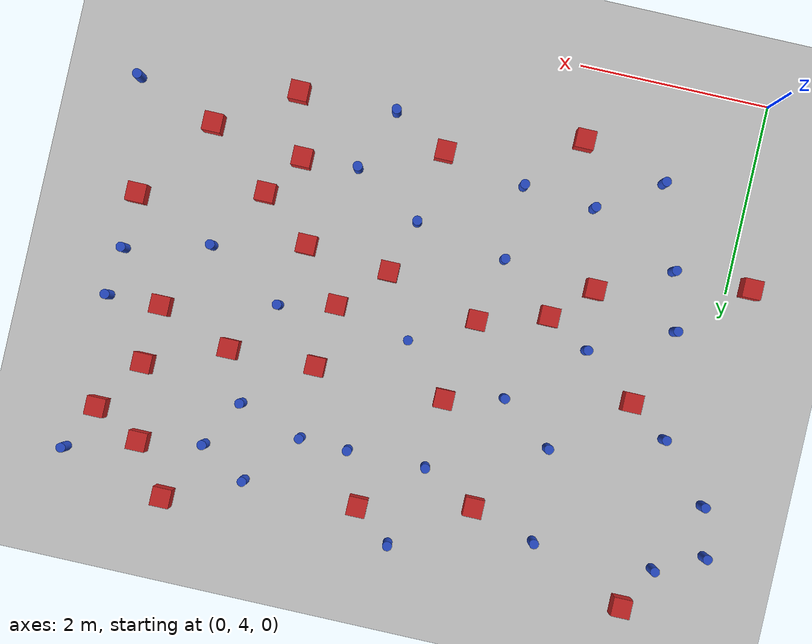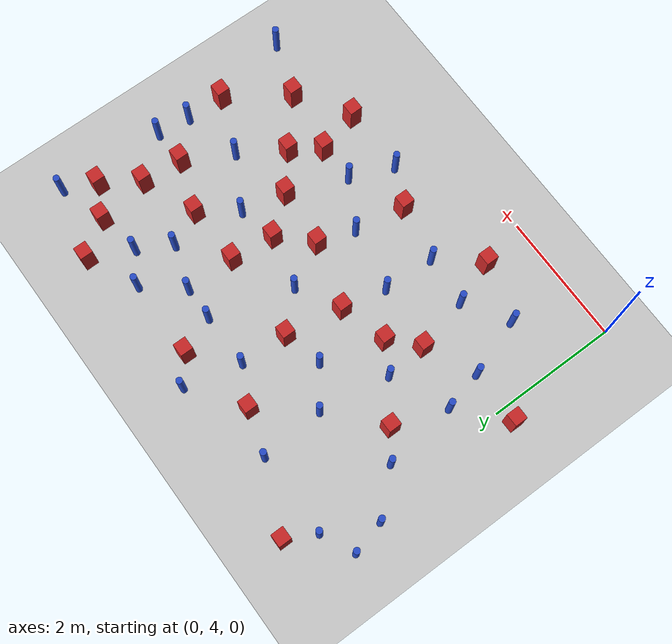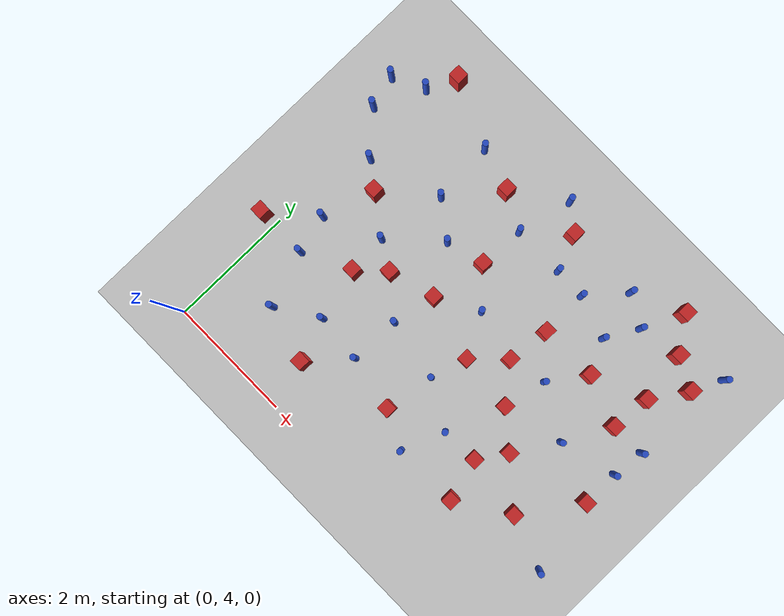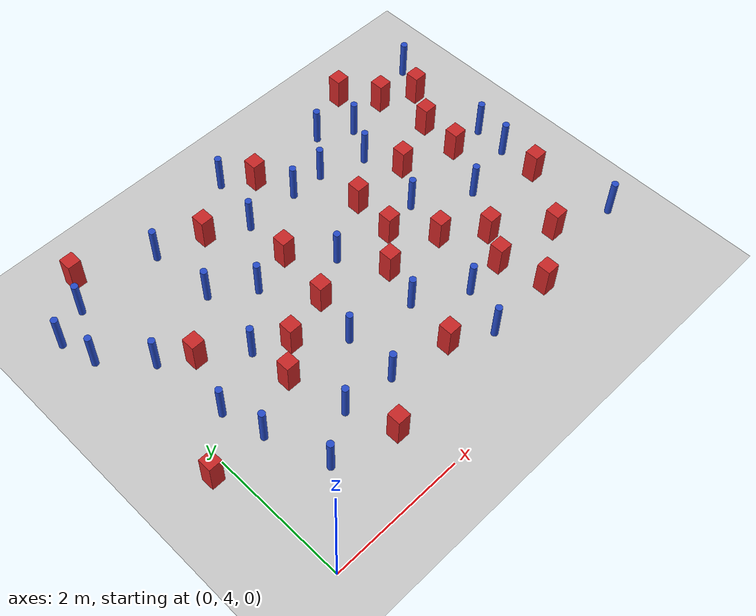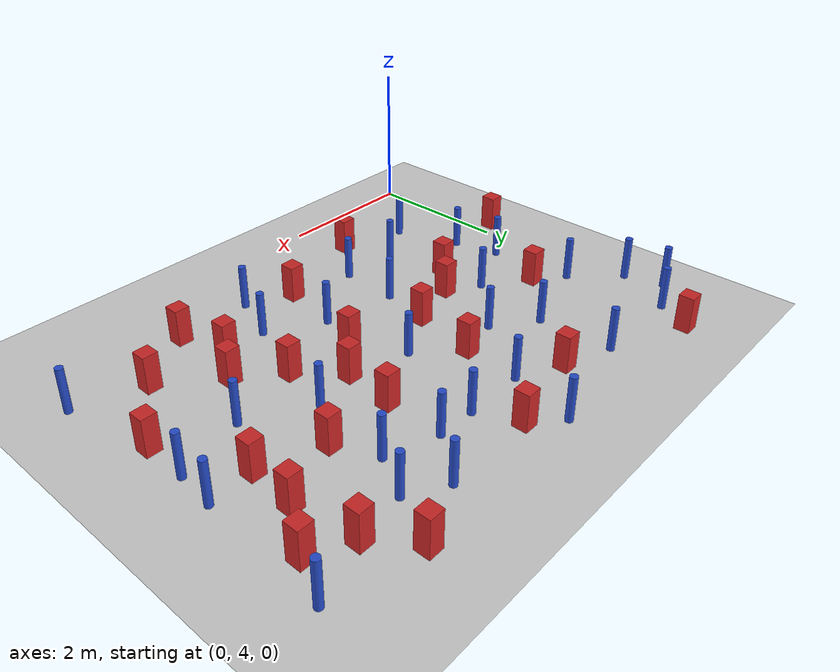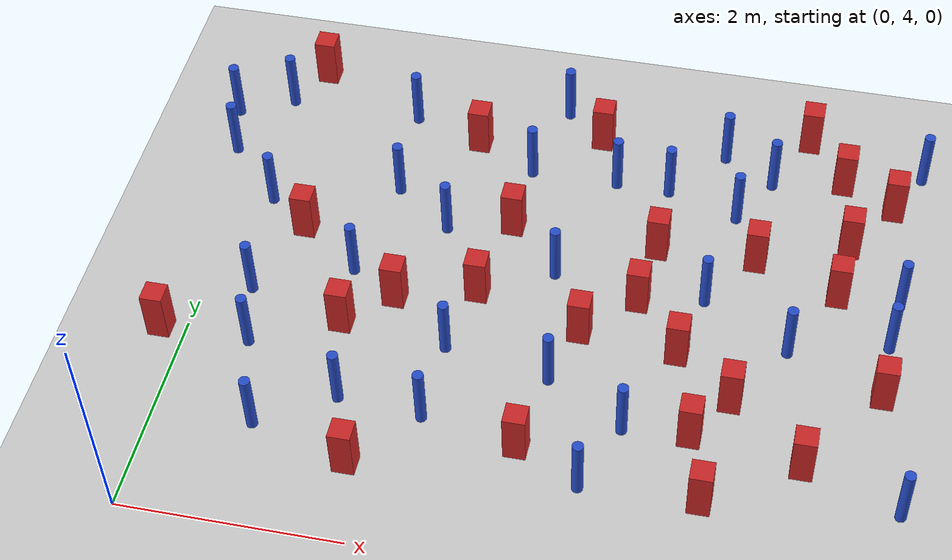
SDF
<sdf version="1.6">
 <world name="default">
  <model name="ground_plane">
   <static>1</static>
   <link name="link">
    <collision name="collision">
     <geometry><plane><normal>0 0 1</normal><size>100 100</size></plane></geometry>
     <surface><friction><ode><mu>100</mu><mu2>50</mu2></ode></friction></surface>
    </collision>
    <visual name="visual">
     <cast_shadows>0</cast_shadows>
     <geometry><plane><normal>0 0 1</normal><size>100 100</size></plane></geometry>
     <material>
      <ambient>1.0 1.0 1.0 1.0</ambient>
      <diffuse>0.8 0.8 0.8 1.0</diffuse>
      <specular>0.01 0.01 0.01 1.000000</specular>
     </material>
    </visual>
   </link>
  </model>
  <model name="pole_obstacle3">
   <static>true</static>
   <pose>0.441866988841 6.503014817 2.88873142074e-08 -9.90536689683e-09 4.60219948993e-07 -1.20965994957e-07</pose>
   <link name="link">
    <pose>0 0 0.3 0 -0 0</pose>
    <inertial>
     <mass>1</mass>
     <inertia><ixx>0.145833</ixx><ixy>0</ixy><ixz>0</ixz><iyy>0.145833</iyy><iyz>0</iyz><izz>0.125</izz></inertia>
    </inertial>
    <collision name="collision">
     <geometry><cylinder><radius>0.05</radius><length>.6</length></cylinder></geometry>
    </collision>
    <visual name="visual">
     <geometry><cylinder><radius>0.05</radius><length>.6</length></cylinder></geometry>
     <material>
      <script><name>Gazebo/Blue</name><uri>file://media/materials/scripts/gazebo.material</uri></script>
     </material>
    </visual>
   </link>
  </model>
  <model name="square_post_obstacle12">
   <static>true</static>
   <pose>2.48338838565 6.84339347547 8.22691968438e-08 7.2212513382e-06 -7.54495500217e-07 2.29674213826e-05</pose>
   <link name="link">
    <pose>0 0 0.25 0 -0 0</pose>
    <inertial>
     <mass>100</mass>
     <inertia>
      <ixx>0.166667</ixx>
      <ixy>0</ixy>
      <ixz>0</ixz>
      <iyy>0.166667</iyy>
      <iyz>0</iyz>
      <izz>0.166667</izz>
     </inertia>
    </inertial>
    <collision name="collision"><geometry><box><size>.2 .2 .5</size></box></geometry></collision>
    <visual name="visual">
     <geometry><box><size>.2 .2 .5</size></box></geometry>
     <material>
      <script><name>Gazebo/Red</name><uri>file://media/materials/scripts/gazebo.material</uri></script>
     </material>
    </visual>
   </link>
  </model>
  <model name="square_post_obstacle15">
   <static>true</static>
   <pose>1.35723531985 6.26059317896 8.22691968438e-08 7.2212513382e-06 -7.54495500217e-07 2.29674213826e-05</pose>
   <link name="link">
    <pose>0 0 0.25 0 -0 0</pose>
    <inertial>
     <mass>100</mass>
     <inertia>
      <ixx>0.166667</ixx>
      <ixy>0</ixy>
      <ixz>0</ixz>
      <iyy>0.166667</iyy>
      <iyz>0</iyz>
      <izz>0.166667</izz>
     </inertia>
    </inertial>
    <collision name="collision"><geometry><box><size>.2 .2 .5</size></box></geometry></collision>
    <visual name="visual">
     <geometry><box><size>.2 .2 .5</size></box></geometry>
     <material>
      <script><name>Gazebo/Red</name><uri>file://media/materials/scripts/gazebo.material</uri></script>
     </material>
    </visual>
   </link>
  </model>
  <model name="square_post_obstacle23">
   <static>true</static>
   <pose>1.75817973603 6.63917724675 8.22691968438e-08 7.2212513382e-06 -7.54495500217e-07 2.29674213826e-05</pose>
   <link name="link">
    <pose>0 0 0.25 0 -0 0</pose>
    <inertial>
     <mass>100</mass>
     <inertia>
      <ixx>0.166667</ixx>
      <ixy>0</ixy>
      <ixz>0</ixz>
      <iyy>0.166667</iyy>
      <iyz>0</iyz>
      <izz>0.166667</izz>
     </inertia>
    </inertial>
    <collision name="collision"><geometry><box><size>.2 .2 .5</size></box></geometry></collision>
    <visual name="visual">
     <geometry><box><size>.2 .2 .5</size></box></geometry>
     <material>
      <script><name>Gazebo/Red</name><uri>file://media/materials/scripts/gazebo.material</uri></script>
     </material>
    </visual>
   </link>
  </model>
  <model name="square_post_obstacle29">
   <static>true</static>
   <pose>3.93869183844 7.00800149829 8.22691968438e-08 7.2212513382e-06 -7.54495500217e-07 2.29674213826e-05</pose>
   <link name="link">
    <pose>0 0 0.25 0 -0 0</pose>
    <inertial>
     <mass>100</mass>
     <inertia>
      <ixx>0.166667</ixx>
      <ixy>0</ixy>
      <ixz>0</ixz>
      <iyy>0.166667</iyy>
      <iyz>0</iyz>
      <izz>0.166667</izz>
     </inertia>
    </inertial>
    <collision name="collision"><geometry><box><size>.2 .2 .5</size></box></geometry></collision>
    <visual name="visual">
     <geometry><box><size>.2 .2 .5</size></box></geometry>
     <material>
      <script><name>Gazebo/Red</name><uri>file://media/materials/scripts/gazebo.material</uri></script>
     </material>
    </visual>
   </link>
  </model>
  <model name="pole_obstacle32">
   <static>true</static>
   <pose>6.3741279877 9.06772614156 2.88873142074e-08 -9.9053668967e-09 4.60219948993e-07 -1.20965994957e-07</pose>
   <link name="link">
    <pose>0 0 0.3 0 -0 0</pose>
    <inertial>
     <mass>1</mass>
     <inertia><ixx>0.145833</ixx><ixy>0</ixy><ixz>0</ixz><iyy>0.145833</iyy><iyz>0</iyz><izz>0.125</izz></inertia>
    </inertial>
    <collision name="collision">
     <geometry><cylinder><radius>0.05</radius><length>.6</length></cylinder></geometry>
    </collision>
    <visual name="visual">
     <geometry><cylinder><radius>0.05</radius><length>.6</length></cylinder></geometry>
     <material>
      <script><name>Gazebo/Blue</name><uri>file://media/materials/scripts/gazebo.material</uri></script>
     </material>
    </visual>
   </link>
  </model>
  <model name="pole_obstacle38">
   <static>true</static>
   <pose>4.68189122507 8.22161573849 2.88873142074e-08 -9.9053668967e-09 4.60219948993e-07 -1.20965994957e-07</pose>
   <link name="link">
    <pose>0 0 0.3 0 -0 0</pose>
    <inertial>
     <mass>1</mass>
     <inertia><ixx>0.145833</ixx><ixy>0</ixy><ixz>0</ixz><iyy>0.145833</iyy><iyz>0</iyz><izz>0.125</izz></inertia>
    </inertial>
    <collision name="collision">
     <geometry><cylinder><radius>0.05</radius><length>.6</length></cylinder></geometry>
    </collision>
    <visual name="visual">
     <geometry><cylinder><radius>0.05</radius><length>.6</length></cylinder></geometry>
     <material>
      <script><name>Gazebo/Blue</name><uri>file://media/materials/scripts/gazebo.material</uri></script>
     </material>
    </visual>
   </link>
  </model>
  <model name="square_post_obstacle39">
   <static>true</static>
   <pose>4.91182277904 6.03338576991 8.22691968438e-08 7.2212513382e-06 -7.54495500217e-07 2.29674213826e-05</pose>
   <link name="link">
    <pose>0 0 0.25 0 -0 0</pose>
    <inertial>
     <mass>100</mass>
     <inertia>
      <ixx>0.166667</ixx>
      <ixy>0</ixy>
      <ixz>0</ixz>
      <iyy>0.166667</iyy>
      <iyz>0</iyz>
      <izz>0.166667</izz>
     </inertia>
    </inertial>
    <collision name="collision"><geometry><box><size>.2 .2 .5</size></box></geometry></collision>
    <visual name="visual">
     <geometry><box><size>.2 .2 .5</size></box></geometry>
     <material>
      <script><name>Gazebo/Red</name><uri>file://media/materials/scripts/gazebo.material</uri></script>
     </material>
    </visual>
   </link>
  </model>
  <model name="square_post_obstacle44">
   <static>true</static>
   <pose>3.26917630849 8.99993106796 8.22691968438e-08 7.22125133819e-06 -7.54495500217e-07 2.29674213826e-05</pose>
   <link name="link">
    <pose>0 0 0.25 0 -0 0</pose>
    <inertial>
     <mass>100</mass>
     <inertia>
      <ixx>0.166667</ixx>
      <ixy>0</ixy>
      <ixz>0</ixz>
      <iyy>0.166667</iyy>
      <iyz>0</iyz>
      <izz>0.166667</izz>
     </inertia>
    </inertial>
    <collision name="collision"><geometry><box><size>.2 .2 .5</size></box></geometry></collision>
    <visual name="visual">
     <geometry><box><size>.2 .2 .5</size></box></geometry>
     <material>
      <script><name>Gazebo/Red</name><uri>file://media/materials/scripts/gazebo.material</uri></script>
     </material>
    </visual>
   </link>
  </model>
  <model name="square_post_obstacle49">
   <static>true</static>
   <pose>4.80095955326 4.93759629518 8.22691968438e-08 7.2212513382e-06 -7.54495500217e-07 2.29674213826e-05</pose>
   <link name="link">
    <pose>0 0 0.25 0 -0 0</pose>
    <inertial>
     <mass>100</mass>
     <inertia>
      <ixx>0.166667</ixx>
      <ixy>0</ixy>
      <ixz>0</ixz>
      <iyy>0.166667</iyy>
      <iyz>0</iyz>
      <izz>0.166667</izz>
     </inertia>
    </inertial>
    <collision name="collision"><geometry><box><size>.2 .2 .5</size></box></geometry></collision>
    <visual name="visual">
     <geometry><box><size>.2 .2 .5</size></box></geometry>
     <material>
      <script><name>Gazebo/Red</name><uri>file://media/materials/scripts/gazebo.material</uri></script>
     </material>
    </visual>
   </link>
  </model>
  <model name="square_post_obstacle51">
   <static>true</static>
   <pose>3.48451691074 6.5499642906 8.22691968438e-08 7.2212513382e-06 -7.54495500217e-07 2.29674213826e-05</pose>
   <link name="link">
    <pose>0 0 0.25 0 -0 0</pose>
    <inertial>
     <mass>100</mass>
     <inertia>
      <ixx>0.166667</ixx>
      <ixy>0</ixy>
      <ixz>0</ixz>
      <iyy>0.166667</iyy>
      <iyz>0</iyz>
      <izz>0.166667</izz>
     </inertia>
    </inertial>
    <collision name="collision"><geometry><box><size>.2 .2 .5</size></box></geometry></collision>
    <visual name="visual">
     <geometry><box><size>.2 .2 .5</size></box></geometry>
     <material>
      <script><name>Gazebo/Red</name><uri>file://media/materials/scripts/gazebo.material</uri></script>
     </material>
    </visual>
   </link>
  </model>
  <model name="square_post_obstacle53">
   <static>true</static>
   <pose>6.21145163253 6.33149349426 8.22691968438e-08 7.2212513382e-06 -7.54495500217e-07 2.29674213826e-05</pose>
   <link name="link">
    <pose>0 0 0.25 0 -0 0</pose>
    <inertial>
     <mass>100</mass>
     <inertia>
      <ixx>0.166667</ixx>
      <ixy>0</ixy>
      <ixz>0</ixz>
      <iyy>0.166667</iyy>
      <iyz>0</iyz>
      <izz>0.166667</izz>
     </inertia>
    </inertial>
    <collision name="collision"><geometry><box><size>.2 .2 .5</size></box></geometry></collision>
    <visual name="visual">
     <geometry><box><size>.2 .2 .5</size></box></geometry>
     <material>
      <script><name>Gazebo/Red</name><uri>file://media/materials/scripts/gazebo.material</uri></script>
     </material>
    </visual>
   </link>
  </model>
  <model name="pole_obstacle51">
   <static>true</static>
   <pose>0.130403245965 8.96758718954 2.88873142074e-08 -9.90536690979e-09 4.60219948962e-07 -1.20965994979e-07</pose>
   <link name="link">
    <pose>0 0 0.3 0 -0 0</pose>
    <inertial>
     <mass>1</mass>
     <inertia><ixx>0.145833</ixx><ixy>0</ixy><ixz>0</ixz><iyy>0.145833</iyy><iyz>0</iyz><izz>0.125</izz></inertia>
    </inertial>
    <collision name="collision">
     <geometry><cylinder><radius>0.05</radius><length>.6</length></cylinder></geometry>
    </collision>
    <visual name="visual">
     <geometry><cylinder><radius>0.05</radius><length>.6</length></cylinder></geometry>
     <material>
      <script><name>Gazebo/Blue</name><uri>file://media/materials/scripts/gazebo.material</uri></script>
     </material>
    </visual>
   </link>
  </model>
  <model name="square_post_obstacle56">
   <static>true</static>
   <pose>6.13506512664 8.58440387525 8.22691968438e-08 7.22125133819e-06 -7.54495500217e-07 2.29674213826e-05</pose>
   <link name="link">
    <pose>0 0 0.25 0 -0 0</pose>
    <inertial>
     <mass>100</mass>
     <inertia>
      <ixx>0.166667</ixx>
      <ixy>0</ixy>
      <ixz>0</ixz>
      <iyy>0.166667</iyy>
      <iyz>0</iyz>
      <izz>0.166667</izz>
     </inertia>
    </inertial>
    <collision name="collision"><geometry><box><size>.2 .2 .5</size></box></geometry></collision>
    <visual name="visual">
     <geometry><box><size>.2 .2 .5</size></box></geometry>
     <material>
      <script><name>Gazebo/Red</name><uri>file://media/materials/scripts/gazebo.material</uri></script>
     </material>
    </visual>
   </link>
  </model>
  <model name="square_post_obstacle59">
   <static>true</static>
   <pose>5.59937605928 5.44970213473 8.22691968438e-08 7.2212513382e-06 -7.54495500217e-07 2.29674213826e-05</pose>
   <link name="link">
    <pose>0 0 0.25 0 -0 0</pose>
    <inertial>
     <mass>100</mass>
     <inertia>
      <ixx>0.166667</ixx>
      <ixy>0</ixy>
      <ixz>0</ixz>
      <iyy>0.166667</iyy>
      <iyz>0</iyz>
      <izz>0.166667</izz>
     </inertia>
    </inertial>
    <collision name="collision"><geometry><box><size>.2 .2 .5</size></box></geometry></collision>
    <visual name="visual">
     <geometry><box><size>.2 .2 .5</size></box></geometry>
     <material>
      <script><name>Gazebo/Red</name><uri>file://media/materials/scripts/gazebo.material</uri></script>
     </material>
    </visual>
   </link>
  </model>
  <model name="pole_obstacle57">
   <static>true</static>
   <pose>-0.36993921269 8.72590324971 2.88873142074e-08 -9.90536691079e-09 4.6021994896e-07 -1.2096599498e-07</pose>
   <link name="link">
    <pose>0 0 0.3 0 -0 0</pose>
    <inertial>
     <mass>1</mass>
     <inertia><ixx>0.145833</ixx><ixy>0</ixy><ixz>0</ixz><iyy>0.145833</iyy><iyz>0</iyz><izz>0.125</izz></inertia>
    </inertial>
    <collision name="collision">
     <geometry><cylinder><radius>0.05</radius><length>.6</length></cylinder></geometry>
    </collision>
    <visual name="visual">
     <geometry><cylinder><radius>0.05</radius><length>.6</length></cylinder></geometry>
     <material>
      <script><name>Gazebo/Blue</name><uri>file://media/materials/scripts/gazebo.material</uri></script>
     </material>
    </visual>
   </link>
  </model>
  <model name="pole_obstacle77">
   <static>true</static>
   <pose>6.4565002031 5.14125102595 2.88873142074e-08 -9.90536690842e-09 4.60219948965e-07 -1.20965994976e-07</pose>
   <link name="link">
    <pose>0 0 0.3 0 -0 0</pose>
    <inertial>
     <mass>1</mass>
     <inertia><ixx>0.145833</ixx><ixy>0</ixy><ixz>0</ixz><iyy>0.145833</iyy><iyz>0</iyz><izz>0.125</izz></inertia>
    </inertial>
    <collision name="collision">
     <geometry><cylinder><radius>0.05</radius><length>.6</length></cylinder></geometry>
    </collision>
    <visual name="visual">
     <geometry><cylinder><radius>0.05</radius><length>.6</length></cylinder></geometry>
     <material>
      <script><name>Gazebo/Blue</name><uri>file://media/materials/scripts/gazebo.material</uri></script>
     </material>
    </visual>
   </link>
  </model>
  <model name="pole_obstacle83">
   <static>true</static>
   <pose>1.40703459753 8.96148149743 2.88873142074e-08 -9.90536690474e-09 4.60219948974e-07 -1.2096599497e-07</pose>
   <link name="link">
    <pose>0 0 0.3 0 -0 0</pose>
    <inertial>
     <mass>1</mass>
     <inertia><ixx>0.145833</ixx><ixy>0</ixy><ixz>0</ixz><iyy>0.145833</iyy><iyz>0</iyz><izz>0.125</izz></inertia>
    </inertial>
    <collision name="collision">
     <geometry><cylinder><radius>0.05</radius><length>.6</length></cylinder></geometry>
    </collision>
    <visual name="visual">
     <geometry><cylinder><radius>0.05</radius><length>.6</length></cylinder></geometry>
     <material>
      <script><name>Gazebo/Blue</name><uri>file://media/materials/scripts/gazebo.material</uri></script>
     </material>
    </visual>
   </link>
  </model>
  <model name="pole_obstacle89">
   <static>true</static>
   <pose>6.22841850663 6.91678363826 2.88873142074e-08 -9.90536690842e-09 4.60219948965e-07 -1.20965994976e-07</pose>
   <link name="link">
    <pose>0 0 0.3 0 -0 0</pose>
    <inertial>
     <mass>1</mass>
     <inertia><ixx>0.145833</ixx><ixy>0</ixy><ixz>0</ixz><iyy>0.145833</iyy><iyz>0</iyz><izz>0.125</izz></inertia>
    </inertial>
    <collision name="collision">
     <geometry><cylinder><radius>0.05</radius><length>.6</length></cylinder></geometry>
    </collision>
    <visual name="visual">
     <geometry><cylinder><radius>0.05</radius><length>.6</length></cylinder></geometry>
     <material>
      <script><name>Gazebo/Blue</name><uri>file://media/materials/scripts/gazebo.material</uri></script>
     </material>
    </visual>
   </link>
  </model>
  <model name="pole_obstacle90">
   <static>true</static>
   <pose>5.33888626067 6.68937029586 2.88873142074e-08 -9.90536690842e-09 4.60219948965e-07 -1.20965994976e-07</pose>
   <link name="link">
    <pose>0 0 0.3 0 -0 0</pose>
    <inertial>
     <mass>1</mass>
     <inertia><ixx>0.145833</ixx><ixy>0</ixy><ixz>0</ixz><iyy>0.145833</iyy><iyz>0</iyz><izz>0.125</izz></inertia>
    </inertial>
    <collision name="collision">
     <geometry><cylinder><radius>0.05</radius><length>.6</length></cylinder></geometry>
    </collision>
    <visual name="visual">
     <geometry><cylinder><radius>0.05</radius><length>.6</length></cylinder></geometry>
     <material>
      <script><name>Gazebo/Blue</name><uri>file://media/materials/scripts/gazebo.material</uri></script>
     </material>
    </visual>
   </link>
  </model>
  <model name="pole_obstacle92">
   <static>true</static>
   <pose>1.5473990495 5.43712405657 2.88873142074e-08 -9.90536689852e-09 4.60219948989e-07 -1.2096599496e-07</pose>
   <link name="link">
    <pose>0 0 0.3 0 -0 0</pose>
    <inertial>
     <mass>1</mass>
     <inertia><ixx>0.145833</ixx><ixy>0</ixy><ixz>0</ixz><iyy>0.145833</iyy><iyz>0</iyz><izz>0.125</izz></inertia>
    </inertial>
    <collision name="collision">
     <geometry><cylinder><radius>0.05</radius><length>.6</length></cylinder></geometry>
    </collision>
    <visual name="visual">
     <geometry><cylinder><radius>0.05</radius><length>.6</length></cylinder></geometry>
     <material>
      <script><name>Gazebo/Blue</name><uri>file://media/materials/scripts/gazebo.material</uri></script>
     </material>
    </visual>
   </link>
  </model>
  <model name="pole_obstacle98">
   <static>true</static>
   <pose>4.03375893235 5.57027338563 2.88873142074e-08 -9.90536690822e-09 4.60219948966e-07 -1.20965994976e-07</pose>
   <link name="link">
    <pose>0 0 0.3 0 -0 0</pose>
    <inertial>
     <mass>1</mass>
     <inertia><ixx>0.145833</ixx><ixy>0</ixy><ixz>0</ixz><iyy>0.145833</iyy><iyz>0</iyz><izz>0.125</izz></inertia>
    </inertial>
    <collision name="collision">
     <geometry><cylinder><radius>0.05</radius><length>.6</length></cylinder></geometry>
    </collision>
    <visual name="visual">
     <geometry><cylinder><radius>0.05</radius><length>.6</length></cylinder></geometry>
     <material>
      <script><name>Gazebo/Blue</name><uri>file://media/materials/scripts/gazebo.material</uri></script>
     </material>
    </visual>
   </link>
  </model>
  <model name="pole_obstacle101">
   <static>true</static>
   <pose>-0.233467845072 8.21139920622 2.88873142074e-08 -9.90536690912e-09 4.60219948964e-07 -1.20965994978e-07</pose>
   <link name="link">
    <pose>0 0 0.3 0 -0 0</pose>
    <inertial>
     <mass>1</mass>
     <inertia><ixx>0.145833</ixx><ixy>0</ixy><ixz>0</ixz><iyy>0.145833</iyy><iyz>0</iyz><izz>0.125</izz></inertia>
    </inertial>
    <collision name="collision">
     <geometry><cylinder><radius>0.05</radius><length>.6</length></cylinder></geometry>
    </collision>
    <visual name="visual">
     <geometry><cylinder><radius>0.05</radius><length>.6</length></cylinder></geometry>
     <material>
      <script><name>Gazebo/Blue</name><uri>file://media/materials/scripts/gazebo.material</uri></script>
     </material>
    </visual>
   </link>
  </model>
  <model name="pole_obstacle102">
   <static>true</static>
   <pose>4.48098888042 9.00000485199 2.88873142074e-08 -9.9053668967e-09 4.60219948993e-07 -1.20965994957e-07</pose>
   <link name="link">
    <pose>0 0 0.3 0 -0 0</pose>
    <inertial>
     <mass>1</mass>
     <inertia><ixx>0.145833</ixx><ixy>0</ixy><ixz>0</ixz><iyy>0.145833</iyy><iyz>0</iyz><izz>0.125</izz></inertia>
    </inertial>
    <collision name="collision">
     <geometry><cylinder><radius>0.05</radius><length>.6</length></cylinder></geometry>
    </collision>
    <visual name="visual">
     <geometry><cylinder><radius>0.05</radius><length>.6</length></cylinder></geometry>
     <material>
      <script><name>Gazebo/Blue</name><uri>file://media/materials/scripts/gazebo.material</uri></script>
     </material>
    </visual>
   </link>
  </model>
  <model name="square_post_obstacle91">
   <static>true</static>
   <pose>4.92894168536 7.69671107568 8.22691968438e-08 7.2212513382e-06 -7.54495500217e-07 2.29674213826e-05</pose>
   <link name="link">
    <pose>0 0 0.25 0 -0 0</pose>
    <inertial>
     <mass>100</mass>
     <inertia>
      <ixx>0.166667</ixx>
      <ixy>0</ixy>
      <ixz>0</ixz>
      <iyy>0.166667</iyy>
      <iyz>0</iyz>
      <izz>0.166667</izz>
     </inertia>
    </inertial>
    <collision name="collision"><geometry><box><size>.2 .2 .5</size></box></geometry></collision>
    <visual name="visual">
     <geometry><box><size>.2 .2 .5</size></box></geometry>
     <material>
      <script><name>Gazebo/Red</name><uri>file://media/materials/scripts/gazebo.material</uri></script>
     </material>
    </visual>
   </link>
  </model>
  <model name="pole_obstacle103">
   <static>true</static>
   <pose>1.30165576079 6.89763231519 2.88873142074e-08 -9.90536689852e-09 4.60219948989e-07 -1.2096599496e-07</pose>
   <link name="link">
    <pose>0 0 0.3 0 -0 0</pose>
    <inertial>
     <mass>1</mass>
     <inertia><ixx>0.145833</ixx><ixy>0</ixy><ixz>0</ixz><iyy>0.145833</iyy><iyz>0</iyz><izz>0.125</izz></inertia>
    </inertial>
    <collision name="collision">
     <geometry><cylinder><radius>0.05</radius><length>.6</length></cylinder></geometry>
    </collision>
    <visual name="visual">
     <geometry><cylinder><radius>0.05</radius><length>.6</length></cylinder></geometry>
     <material>
      <script><name>Gazebo/Blue</name><uri>file://media/materials/scripts/gazebo.material</uri></script>
     </material>
    </visual>
   </link>
  </model>
  <model name="square_post_obstacle93">
   <static>true</static>
   <pose>5.26729990974 9.34936500625 8.22691968438e-08 7.22125133819e-06 -7.54495500217e-07 2.29674213826e-05</pose>
   <link name="link">
    <pose>0 0 0.25 0 -0 0</pose>
    <inertial>
     <mass>100</mass>
     <inertia>
      <ixx>0.166667</ixx>
      <ixy>0</ixy>
      <ixz>0</ixz>
      <iyy>0.166667</iyy>
      <iyz>0</iyz>
      <izz>0.166667</izz>
     </inertia>
    </inertial>
    <collision name="collision"><geometry><box><size>.2 .2 .5</size></box></geometry></collision>
    <visual name="visual">
     <geometry><box><size>.2 .2 .5</size></box></geometry>
     <material>
      <script><name>Gazebo/Red</name><uri>file://media/materials/scripts/gazebo.material</uri></script>
     </material>
    </visual>
   </link>
  </model>
  <model name="pole_obstacle105">
   <static>true</static>
   <pose>0.309185791621 7.62363395108 2.88873142074e-08 -9.90536689683e-09 4.60219948993e-07 -1.20965994957e-07</pose>
   <link name="link">
    <pose>0 0 0.3 0 -0 0</pose>
    <inertial>
     <mass>1</mass>
     <inertia><ixx>0.145833</ixx><ixy>0</ixy><ixz>0</ixz><iyy>0.145833</iyy><iyz>0</iyz><izz>0.125</izz></inertia>
    </inertial>
    <collision name="collision">
     <geometry><cylinder><radius>0.05</radius><length>.6</length></cylinder></geometry>
    </collision>
    <visual name="visual">
     <geometry><cylinder><radius>0.05</radius><length>.6</length></cylinder></geometry>
     <material>
      <script><name>Gazebo/Blue</name><uri>file://media/materials/scripts/gazebo.material</uri></script>
     </material>
    </visual>
   </link>
  </model>
  <model name="pole_obstacle109">
   <static>true</static>
   <pose>0.896977747766 5.02544369253 2.88873142074e-08 -9.90536689661e-09 4.60219948993e-07 -1.20965994957e-07</pose>
   <link name="link">
    <pose>0 0 0.3 0 -0 0</pose>
    <inertial>
     <mass>1</mass>
     <inertia><ixx>0.145833</ixx><ixy>0</ixy><ixz>0</ixz><iyy>0.145833</iyy><iyz>0</iyz><izz>0.125</izz></inertia>
    </inertial>
    <collision name="collision">
     <geometry><cylinder><radius>0.05</radius><length>.6</length></cylinder></geometry>
    </collision>
    <visual name="visual">
     <geometry><cylinder><radius>0.05</radius><length>.6</length></cylinder></geometry>
     <material>
      <script><name>Gazebo/Blue</name><uri>file://media/materials/scripts/gazebo.material</uri></script>
     </material>
    </visual>
   </link>
  </model>
  <model name="pole_obstacle110">
   <static>true</static>
   <pose>4.53184225794 7.14211573083 2.88873142074e-08 -9.90536690842e-09 4.60219948965e-07 -1.20965994976e-07</pose>
   <link name="link">
    <pose>0 0 0.3 0 -0 0</pose>
    <inertial>
     <mass>1</mass>
     <inertia><ixx>0.145833</ixx><ixy>0</ixy><ixz>0</ixz><iyy>0.145833</iyy><iyz>0</iyz><izz>0.125</izz></inertia>
    </inertial>
    <collision name="collision">
     <geometry><cylinder><radius>0.05</radius><length>.6</length></cylinder></geometry>
    </collision>
    <visual name="visual">
     <geometry><cylinder><radius>0.05</radius><length>.6</length></cylinder></geometry>
     <material>
      <script><name>Gazebo/Blue</name><uri>file://media/materials/scripts/gazebo.material</uri></script>
     </material>
    </visual>
   </link>
  </model>
  <model name="square_post_obstacle100">
   <static>true</static>
   <pose>5.76729816497 8.03645389565 8.22691968438e-08 7.22125133819e-06 -7.54495500217e-07 2.29674213826e-05</pose>
   <link name="link">
    <pose>0 0 0.25 0 -0 0</pose>
    <inertial>
     <mass>100</mass>
     <inertia>
      <ixx>0.166667</ixx>
      <ixy>0</ixy>
      <ixz>0</ixz>
      <iyy>0.166667</iyy>
      <iyz>0</iyz>
      <izz>0.166667</izz>
     </inertia>
    </inertial>
    <collision name="collision"><geometry><box><size>.2 .2 .5</size></box></geometry></collision>
    <visual name="visual">
     <geometry><box><size>.2 .2 .5</size></box></geometry>
     <material>
      <script><name>Gazebo/Red</name><uri>file://media/materials/scripts/gazebo.material</uri></script>
     </material>
    </visual>
   </link>
  </model>
  <model name="pole_obstacle116">
   <static>true</static>
   <pose>2.0260480657 7.5715050067 2.88873142074e-08 -9.90536689932e-09 4.60219948987e-07 -1.20965994962e-07</pose>
   <link name="link">
    <pose>0 0 0.3 0 -0 0</pose>
    <inertial>
     <mass>1</mass>
     <inertia><ixx>0.145833</ixx><ixy>0</ixy><ixz>0</ixz><iyy>0.145833</iyy><iyz>0</iyz><izz>0.125</izz></inertia>
    </inertial>
    <collision name="collision">
     <geometry><cylinder><radius>0.05</radius><length>.6</length></cylinder></geometry>
    </collision>
    <visual name="visual">
     <geometry><cylinder><radius>0.05</radius><length>.6</length></cylinder></geometry>
     <material>
      <script><name>Gazebo/Blue</name><uri>file://media/materials/scripts/gazebo.material</uri></script>
     </material>
    </visual>
   </link>
  </model>
  <model name="square_post_obstacle105">
   <static>true</static>
   <pose>3.18780793164 5.20443351963 8.22691968438e-08 7.2212513382e-06 -7.54495500217e-07 2.29674213826e-05</pose>
   <link name="link">
    <pose>0 0 0.25 0 -0 0</pose>
    <inertial>
     <mass>100</mass>
     <inertia>
      <ixx>0.166667</ixx>
      <ixy>0</ixy>
      <ixz>0</ixz>
      <iyy>0.166667</iyy>
      <iyz>0</iyz>
      <izz>0.166667</izz>
     </inertia>
    </inertial>
    <collision name="collision"><geometry><box><size>.2 .2 .5</size></box></geometry></collision>
    <visual name="visual">
     <geometry><box><size>.2 .2 .5</size></box></geometry>
     <material>
      <script><name>Gazebo/Red</name><uri>file://media/materials/scripts/gazebo.material</uri></script>
     </material>
    </visual>
   </link>
  </model>
  <model name="square_post_obstacle109">
   <static>true</static>
   <pose>4.37885432299 6.46642497199 8.22691968438e-08 7.2212513382e-06 -7.54495500217e-07 2.29674213826e-05</pose>
   <link name="link">
    <pose>0 0 0.25 0 -0 0</pose>
    <inertial>
     <mass>100</mass>
     <inertia>
      <ixx>0.166667</ixx>
      <ixy>0</ixy>
      <ixz>0</ixz>
      <iyy>0.166667</iyy>
      <iyz>0</iyz>
      <izz>0.166667</izz>
     </inertia>
    </inertial>
    <collision name="collision"><geometry><box><size>.2 .2 .5</size></box></geometry></collision>
    <visual name="visual">
     <geometry><box><size>.2 .2 .5</size></box></geometry>
     <material>
      <script><name>Gazebo/Red</name><uri>file://media/materials/scripts/gazebo.material</uri></script>
     </material>
    </visual>
   </link>
  </model>
  <model name="pole_obstacle131">
   <static>true</static>
   <pose>2.31239576335 5.3707262835 2.88873142074e-08 -9.90536689859e-09 4.60219948989e-07 -1.20965994961e-07</pose>
   <link name="link">
    <pose>0 0 0.3 0 -0 0</pose>
    <inertial>
     <mass>1</mass>
     <inertia><ixx>0.145833</ixx><ixy>0</ixy><ixz>0</ixz><iyy>0.145833</iyy><iyz>0</iyz><izz>0.125</izz></inertia>
    </inertial>
    <collision name="collision">
     <geometry><cylinder><radius>0.05</radius><length>.6</length></cylinder></geometry>
    </collision>
    <visual name="visual">
     <geometry><cylinder><radius>0.05</radius><length>.6</length></cylinder></geometry>
     <material>
      <script><name>Gazebo/Blue</name><uri>file://media/materials/scripts/gazebo.material</uri></script>
     </material>
    </visual>
   </link>
  </model>
  <model name="pole_obstacle132">
   <static>true</static>
   <pose>3.31137287327 5.98093814529 2.88873142074e-08 -9.90536689859e-09 4.60219948989e-07 -1.20965994961e-07</pose>
   <link name="link">
    <pose>0 0 0.3 0 -0 0</pose>
    <inertial>
     <mass>1</mass>
     <inertia><ixx>0.145833</ixx><ixy>0</ixy><ixz>0</ixz><iyy>0.145833</iyy><iyz>0</iyz><izz>0.125</izz></inertia>
    </inertial>
    <collision name="collision">
     <geometry><cylinder><radius>0.05</radius><length>.6</length></cylinder></geometry>
    </collision>
    <visual name="visual">
     <geometry><cylinder><radius>0.05</radius><length>.6</length></cylinder></geometry>
     <material>
      <script><name>Gazebo/Blue</name><uri>file://media/materials/scripts/gazebo.material</uri></script>
     </material>
    </visual>
   </link>
  </model>
  <model name="square_post_obstacle134">
   <static>true</static>
   <pose>4.01342103632 7.67578639722 8.22691968438e-08 7.2212513382e-06 -7.54495500217e-07 2.29674213826e-05</pose>
   <link name="link">
    <pose>0 0 0.25 0 -0 0</pose>
    <inertial>
     <mass>100</mass>
     <inertia>
      <ixx>0.166667</ixx>
      <ixy>0</ixy>
      <ixz>0</ixz>
      <iyy>0.166667</iyy>
      <iyz>0</iyz>
      <izz>0.166667</izz>
     </inertia>
    </inertial>
    <collision name="collision"><geometry><box><size>.2 .2 .5</size></box></geometry></collision>
    <visual name="visual">
     <geometry><box><size>.2 .2 .5</size></box></geometry>
     <material>
      <script><name>Gazebo/Red</name><uri>file://media/materials/scripts/gazebo.material</uri></script>
     </material>
    </visual>
   </link>
  </model>
  <model name="square_post_obstacle150">
   <static>true</static>
   <pose>0.372700382687 9.41318871875 8.22691968438e-08 7.22125133819e-06 -7.54495500217e-07 2.29674213826e-05</pose>
   <link name="link">
    <pose>0 0 0.25 0 -0 0</pose>
    <inertial>
     <mass>100</mass>
     <inertia>
      <ixx>0.166667</ixx>
      <ixy>0</ixy>
      <ixz>0</ixz>
      <iyy>0.166667</iyy>
      <iyz>0</iyz>
      <izz>0.166667</izz>
     </inertia>
    </inertial>
    <collision name="collision"><geometry><box><size>.2 .2 .5</size></box></geometry></collision>
    <visual name="visual">
     <geometry><box><size>.2 .2 .5</size></box></geometry>
     <material>
      <script><name>Gazebo/Red</name><uri>file://media/materials/scripts/gazebo.material</uri></script>
     </material>
    </visual>
   </link>
  </model>
  <model name="square_post_obstacle151">
   <static>true</static>
   <pose>5.71627940957 7.41280381054 8.22691968438e-08 7.2212513382e-06 -7.54495500217e-07 2.29674213826e-05</pose>
   <link name="link">
    <pose>0 0 0.25 0 -0 0</pose>
    <inertial>
     <mass>100</mass>
     <inertia>
      <ixx>0.166667</ixx>
      <ixy>0</ixy>
      <ixz>0</ixz>
      <iyy>0.166667</iyy>
      <iyz>0</iyz>
      <izz>0.166667</izz>
     </inertia>
    </inertial>
    <collision name="collision"><geometry><box><size>.2 .2 .5</size></box></geometry></collision>
    <visual name="visual">
     <geometry><box><size>.2 .2 .5</size></box></geometry>
     <material>
      <script><name>Gazebo/Red</name><uri>file://media/materials/scripts/gazebo.material</uri></script>
     </material>
    </visual>
   </link>
  </model>
  <model name="pole_obstacle160">
   <static>true</static>
   <pose>2.66909965098 8.450266565 2.88873142074e-08 -9.90536692318e-09 4.6021994893e-07 -1.20965994988e-07</pose>
   <link name="link">
    <pose>0 0 0.3 0 -0 0</pose>
    <inertial>
     <mass>1</mass>
     <inertia><ixx>0.145833</ixx><ixy>0</ixy><ixz>0</ixz><iyy>0.145833</iyy><iyz>0</iyz><izz>0.125</izz></inertia>
    </inertial>
    <collision name="collision">
     <geometry><cylinder><radius>0.05</radius><length>.6</length></cylinder></geometry>
    </collision>
    <visual name="visual">
     <geometry><cylinder><radius>0.05</radius><length>.6</length></cylinder></geometry>
     <material>
      <script><name>Gazebo/Blue</name><uri>file://media/materials/scripts/gazebo.material</uri></script>
     </material>
    </visual>
   </link>
  </model>
  <model name="square_post_obstacle157">
   <static>true</static>
   <pose>-0.223394487907 5.90126535646 8.22691968438e-08 7.22125133819e-06 -7.54495500217e-07 2.29674213826e-05</pose>
   <link name="link">
    <pose>0 0 0.25 0 -0 0</pose>
    <inertial>
     <mass>100</mass>
     <inertia>
      <ixx>0.166667</ixx>
      <ixy>0</ixy>
      <ixz>0</ixz>
      <iyy>0.166667</iyy>
      <iyz>0</iyz>
      <izz>0.166667</izz>
     </inertia>
    </inertial>
    <collision name="collision"><geometry><box><size>.2 .2 .5</size></box></geometry></collision>
    <visual name="visual">
     <geometry><box><size>.2 .2 .5</size></box></geometry>
     <material>
      <script><name>Gazebo/Red</name><uri>file://media/materials/scripts/gazebo.material</uri></script>
     </material>
    </visual>
   </link>
  </model>
  <model name="pole_obstacle167">
   <static>true</static>
   <pose>2.87597639689 9.315041206 2.88873142074e-08 -9.90536692318e-09 4.6021994893e-07 -1.20965994988e-07</pose>
   <link name="link">
    <pose>0 0 0.3 0 -0 0</pose>
    <inertial>
     <mass>1</mass>
     <inertia><ixx>0.145833</ixx><ixy>0</ixy><ixz>0</ixz><iyy>0.145833</iyy><iyz>0</iyz><izz>0.125</izz></inertia>
    </inertial>
    <collision name="collision">
     <geometry><cylinder><radius>0.05</radius><length>.6</length></cylinder></geometry>
    </collision>
    <visual name="visual">
     <geometry><cylinder><radius>0.05</radius><length>.6</length></cylinder></geometry>
     <material>
      <script><name>Gazebo/Blue</name><uri>file://media/materials/scripts/gazebo.material</uri></script>
     </material>
    </visual>
   </link>
  </model>
  <model name="pole_obstacle174">
   <static>true</static>
   <pose>4.96598204497 8.72341153591 2.88873142074e-08 -9.9053668967e-09 4.60219948993e-07 -1.20965994957e-07</pose>
   <link name="link">
    <pose>0 0 0.3 0 -0 0</pose>
    <inertial>
     <mass>1</mass>
     <inertia><ixx>0.145833</ixx><ixy>0</ixy><ixz>0</ixz><iyy>0.145833</iyy><iyz>0</iyz><izz>0.125</izz></inertia>
    </inertial>
    <collision name="collision">
     <geometry><cylinder><radius>0.05</radius><length>.6</length></cylinder></geometry>
    </collision>
    <visual name="visual">
     <geometry><cylinder><radius>0.05</radius><length>.6</length></cylinder></geometry>
     <material>
      <script><name>Gazebo/Blue</name><uri>file://media/materials/scripts/gazebo.material</uri></script>
     </material>
    </visual>
   </link>
  </model>
  <model name="square_post_obstacle171">
   <static>true</static>
   <pose>2.09217035574 8.7426260686 8.22691968438e-08 7.22125133819e-06 -7.54495500217e-07 2.29674213826e-05</pose>
   <link name="link">
    <pose>0 0 0.25 0 -0 0</pose>
    <inertial>
     <mass>100</mass>
     <inertia>
      <ixx>0.166667</ixx>
      <ixy>0</ixy>
      <ixz>0</ixz>
      <iyy>0.166667</iyy>
      <iyz>0</iyz>
      <izz>0.166667</izz>
     </inertia>
    </inertial>
    <collision name="collision"><geometry><box><size>.2 .2 .5</size></box></geometry></collision>
    <visual name="visual">
     <geometry><box><size>.2 .2 .5</size></box></geometry>
     <material>
      <script><name>Gazebo/Red</name><uri>file://media/materials/scripts/gazebo.material</uri></script>
     </material>
    </visual>
   </link>
  </model>
  <model name="square_post_obstacle172">
   <static>true</static>
   <pose>0.722950158914 7.3224555603 8.22691968438e-08 7.2212513382e-06 -7.54495500217e-07 2.29674213826e-05</pose>
   <link name="link">
    <pose>0 0 0.25 0 -0 0</pose>
    <inertial>
     <mass>100</mass>
     <inertia>
      <ixx>0.166667</ixx>
      <ixy>0</ixy>
      <ixz>0</ixz>
      <iyy>0.166667</iyy>
      <iyz>0</iyz>
      <izz>0.166667</izz>
     </inertia>
    </inertial>
    <collision name="collision"><geometry><box><size>.2 .2 .5</size></box></geometry></collision>
    <visual name="visual">
     <geometry><box><size>.2 .2 .5</size></box></geometry>
     <material>
      <script><name>Gazebo/Red</name><uri>file://media/materials/scripts/gazebo.material</uri></script>
     </material>
    </visual>
   </link>
  </model>
  <model name="pole_obstacle184">
   <static>true</static>
   <pose>3.13338933028 7.20429305316 2.88873142074e-08 -9.90536689859e-09 4.60219948989e-07 -1.20965994961e-07</pose>
   <link name="link">
    <pose>0 0 0.3 0 -0 0</pose>
    <inertial>
     <mass>1</mass>
     <inertia><ixx>0.145833</ixx><ixy>0</ixy><ixz>0</ixz><iyy>0.145833</iyy><iyz>0</iyz><izz>0.125</izz></inertia>
    </inertial>
    <collision name="collision">
     <geometry><cylinder><radius>0.05</radius><length>.6</length></cylinder></geometry>
    </collision>
    <visual name="visual">
     <geometry><cylinder><radius>0.05</radius><length>.6</length></cylinder></geometry>
     <material>
      <script><name>Gazebo/Blue</name><uri>file://media/materials/scripts/gazebo.material</uri></script>
     </material>
    </visual>
   </link>
  </model>
  <model name="square_post_obstacle175">
   <static>true</static>
   <pose>4.62003655322 5.59767316319 8.22691968438e-08 7.2212513382e-06 -7.54495500217e-07 2.29674213826e-05</pose>
   <link name="link">
    <pose>0 0 0.25 0 -0 0</pose>
    <inertial>
     <mass>100</mass>
     <inertia>
      <ixx>0.166667</ixx>
      <ixy>0</ixy>
      <ixz>0</ixz>
      <iyy>0.166667</iyy>
      <iyz>0</iyz>
      <izz>0.166667</izz>
     </inertia>
    </inertial>
    <collision name="collision"><geometry><box><size>.2 .2 .5</size></box></geometry></collision>
    <visual name="visual">
     <geometry><box><size>.2 .2 .5</size></box></geometry>
     <material>
      <script><name>Gazebo/Red</name><uri>file://media/materials/scripts/gazebo.material</uri></script>
     </material>
    </visual>
   </link>
  </model>
  <model name="square_post_obstacle190">
   <static>true</static>
   <pose>1.8005348178 4.77149776647 8.22691968438e-08 7.2212513382e-06 -7.54495500217e-07 2.29674213826e-05</pose>
   <link name="link">
    <pose>0 0 0.25 0 -0 0</pose>
    <inertial>
     <mass>100</mass>
     <inertia>
      <ixx>0.166667</ixx>
      <ixy>0</ixy>
      <ixz>0</ixz>
      <iyy>0.166667</iyy>
      <iyz>0</iyz>
      <izz>0.166667</izz>
     </inertia>
    </inertial>
    <collision name="collision"><geometry><box><size>.2 .2 .5</size></box></geometry></collision>
    <visual name="visual">
     <geometry><box><size>.2 .2 .5</size></box></geometry>
     <material>
      <script><name>Gazebo/Red</name><uri>file://media/materials/scripts/gazebo.material</uri></script>
     </material>
    </visual>
   </link>
  </model>
  <model name="square_post_obstacle203">
   <static>true</static>
   <pose>2.63639173559 7.71571777901 8.22691968438e-08 7.2212513382e-06 -7.54495500217e-07 2.29674213826e-05</pose>
   <link name="link">
    <pose>0 0 0.25 0 -0 0</pose>
    <inertial>
     <mass>100</mass>
     <inertia>
      <ixx>0.166667</ixx>
      <ixy>0</ixy>
      <ixz>0</ixz>
      <iyy>0.166667</iyy>
      <iyz>0</iyz>
      <izz>0.166667</izz>
     </inertia>
    </inertial>
    <collision name="collision"><geometry><box><size>.2 .2 .5</size></box></geometry></collision>
    <visual name="visual">
     <geometry><box><size>.2 .2 .5</size></box></geometry>
     <material>
      <script><name>Gazebo/Red</name><uri>file://media/materials/scripts/gazebo.material</uri></script>
     </material>
    </visual>
   </link>
  </model>
  <model name="pole_obstacle189">
   <static>true</static>
   <pose>2.34022126728 6.16281435379 2.88873142074e-08 -9.90536689859e-09 4.60219948989e-07 -1.20965994961e-07</pose>
   <link name="link">
    <pose>0 0 0.3 0 -0 0</pose>
    <inertial>
     <mass>1</mass>
     <inertia><ixx>0.145833</ixx><ixy>0</ixy><ixz>0</ixz><iyy>0.145833</iyy><iyz>0</iyz><izz>0.125</izz></inertia>
    </inertial>
    <collision name="collision">
     <geometry><cylinder><radius>0.05</radius><length>.6</length></cylinder></geometry>
    </collision>
    <visual name="visual">
     <geometry><cylinder><radius>0.05</radius><length>.6</length></cylinder></geometry>
     <material>
      <script><name>Gazebo/Blue</name><uri>file://media/materials/scripts/gazebo.material</uri></script>
     </material>
    </visual>
   </link>
  </model>
  <model name="pole_obstacle191">
   <static>true</static>
   <pose>4.00499680784 8.44000933931 2.88873142074e-08 -9.90536689822e-09 4.6021994899e-07 -1.2096599496e-07</pose>
   <link name="link">
    <pose>0 0 0.3 0 -0 0</pose>
    <inertial>
     <mass>1</mass>
     <inertia><ixx>0.145833</ixx><ixy>0</ixy><ixz>0</ixz><iyy>0.145833</iyy><iyz>0</iyz><izz>0.125</izz></inertia>
    </inertial>
    <collision name="collision">
     <geometry><cylinder><radius>0.05</radius><length>.6</length></cylinder></geometry>
    </collision>
    <visual name="visual">
     <geometry><cylinder><radius>0.05</radius><length>.6</length></cylinder></geometry>
     <material>
      <script><name>Gazebo/Blue</name><uri>file://media/materials/scripts/gazebo.material</uri></script>
     </material>
    </visual>
   </link>
  </model>
  <model name="pole_obstacle192">
   <static>true</static>
   <pose>0.593986823655 5.89444918607 2.88873142074e-08 -9.90536689661e-09 4.60219948993e-07 -1.20965994957e-07</pose>
   <link name="link">
    <pose>0 0 0.3 0 -0 0</pose>
    <inertial>
     <mass>1</mass>
     <inertia><ixx>0.145833</ixx><ixy>0</ixy><ixz>0</ixz><iyy>0.145833</iyy><iyz>0</iyz><izz>0.125</izz></inertia>
    </inertial>
    <collision name="collision">
     <geometry><cylinder><radius>0.05</radius><length>.6</length></cylinder></geometry>
    </collision>
    <visual name="visual">
     <geometry><cylinder><radius>0.05</radius><length>.6</length></cylinder></geometry>
     <material>
      <script><name>Gazebo/Blue</name><uri>file://media/materials/scripts/gazebo.material</uri></script>
     </material>
    </visual>
   </link>
  </model>
  <model name="square_post_obstacle218">
   <static>true</static>
   <pose>5.63801121621 8.83622945057 8.22691968438e-08 7.22125133819e-06 -7.54495500217e-07 2.29674213826e-05</pose>
   <link name="link">
    <pose>0 0 0.25 0 -0 0</pose>
    <inertial>
     <mass>100</mass>
     <inertia>
      <ixx>0.166667</ixx>
      <ixy>0</ixy>
      <ixz>0</ixz>
      <iyy>0.166667</iyy>
      <iyz>0</iyz>
      <izz>0.166667</izz>
     </inertia>
    </inertial>
    <collision name="collision"><geometry><box><size>.2 .2 .5</size></box></geometry></collision>
    <visual name="visual">
     <geometry><box><size>.2 .2 .5</size></box></geometry>
     <material>
      <script><name>Gazebo/Red</name><uri>file://media/materials/scripts/gazebo.material</uri></script>
     </material>
    </visual>
   </link>
  </model>
  <model name="pole_obstacle201">
   <static>true</static>
   <pose>1.47039000913 7.97985002041 2.88873142074e-08 -9.90536690167e-09 4.60219948981e-07 -1.20965994966e-07</pose>
   <link name="link">
    <pose>0 0 0.3 0 -0 0</pose>
    <inertial>
     <mass>1</mass>
     <inertia><ixx>0.145833</ixx><ixy>0</ixy><ixz>0</ixz><iyy>0.145833</iyy><iyz>0</iyz><izz>0.125</izz></inertia>
    </inertial>
    <collision name="collision">
     <geometry><cylinder><radius>0.05</radius><length>.6</length></cylinder></geometry>
    </collision>
    <visual name="visual">
     <geometry><cylinder><radius>0.05</radius><length>.6</length></cylinder></geometry>
     <material>
      <script><name>Gazebo/Blue</name><uri>file://media/materials/scripts/gazebo.material</uri></script>
     </material>
    </visual>
   </link>
  </model>
  <model name="pole_obstacle208">
   <static>true</static>
   <pose>3.77202000913 4.90873002041 2.88873142074e-08 -9.90536692062e-09 4.60219948937e-07 -1.20965994985e-07</pose>
   <link name="link">
    <pose>0 0 0.3 0 -0 0</pose>
    <inertial>
     <mass>1</mass>
     <inertia><ixx>0.145833</ixx><ixy>0</ixy><ixz>0</ixz><iyy>0.145833</iyy><iyz>0</iyz><izz>0.125</izz></inertia>
    </inertial>
    <collision name="collision">
     <geometry><cylinder><radius>0.05</radius><length>.6</length></cylinder></geometry>
    </collision>
    <visual name="visual">
     <geometry><cylinder><radius>0.05</radius><length>.6</length></cylinder></geometry>
     <material>
      <script><name>Gazebo/Blue</name><uri>file://media/materials/scripts/gazebo.material</uri></script>
     </material>
    </visual>
   </link>
  </model>
  <model name="pole_obstacle214">
   <static>true</static>
   <pose>6.28185000913 7.42718002041 2.88873142074e-08 -9.90536690842e-09 4.60219948965e-07 -1.20965994976e-07</pose>
   <link name="link">
    <pose>0 0 0.3 0 -0 0</pose>
    <inertial>
     <mass>1</mass>
     <inertia><ixx>0.145833</ixx><ixy>0</ixy><ixz>0</ixz><iyy>0.145833</iyy><iyz>0</iyz><izz>0.125</izz></inertia>
    </inertial>
    <collision name="collision">
     <geometry><cylinder><radius>0.05</radius><length>.6</length></cylinder></geometry>
    </collision>
    <visual name="visual">
     <geometry><cylinder><radius>0.05</radius><length>.6</length></cylinder></geometry>
     <material>
      <script><name>Gazebo/Blue</name><uri>file://media/materials/scripts/gazebo.material</uri></script>
     </material>
    </visual>
   </link>
  </model>
  <model name="pole_obstacle225">
   <static>true</static>
   <pose>3.49559000913 8.45337002041 2.88873142074e-08 -9.90536692318e-09 4.6021994893e-07 -1.20965994988e-07</pose>
   <link name="link">
    <pose>0 0 0.3 0 -0 0</pose>
    <inertial>
     <mass>1</mass>
     <inertia><ixx>0.145833</ixx><ixy>0</ixy><ixz>0</ixz><iyy>0.145833</iyy><iyz>0</iyz><izz>0.125</izz></inertia>
    </inertial>
    <collision name="collision">
     <geometry><cylinder><radius>0.05</radius><length>.6</length></cylinder></geometry>
    </collision>
    <visual name="visual">
     <geometry><cylinder><radius>0.05</radius><length>.6</length></cylinder></geometry>
     <material>
      <script><name>Gazebo/Blue</name><uri>file://media/materials/scripts/gazebo.material</uri></script>
     </material>
    </visual>
   </link>
  </model>
 </world>
</sdf>
